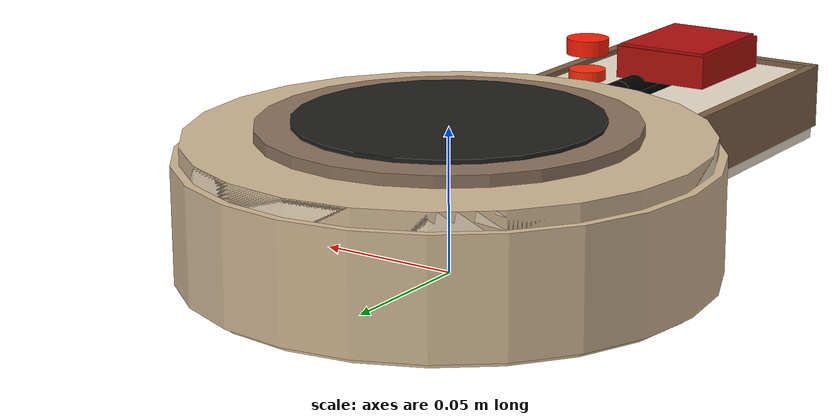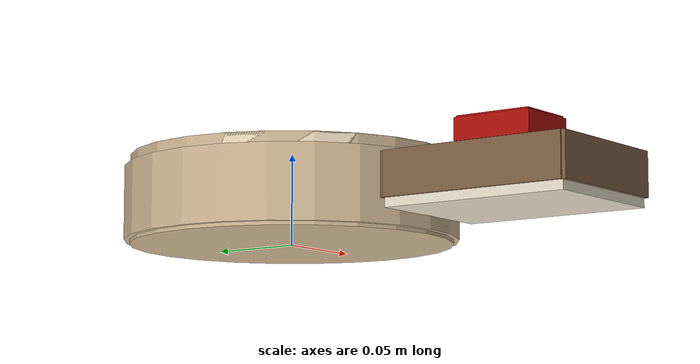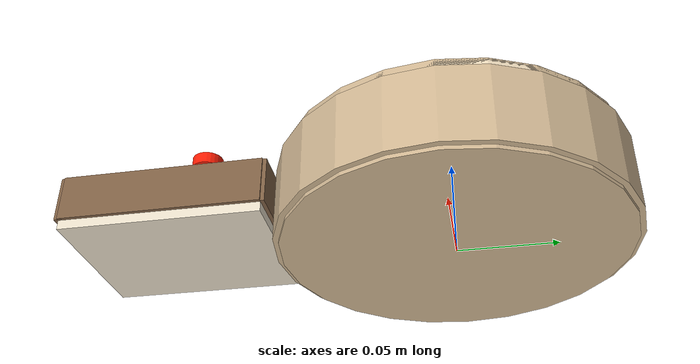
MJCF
<mujoco model="heating_pad">
  <compiler angle="radian" />
  <asset>
    <material name="mat_heating_pad" rgba="0.82 0.72 0.58 1" specular="0.18" shininess="0.12" />
    <material name="mat_pad_top" rgba="0.12 0.12 0.11 1" specular="0.55" shininess="0.45" />
    <material name="mat_pad_ring" rgba="0.93 0.86 0.74 1" specular="0.22" shininess="0.16" />
    <material name="mat_heat_plate" rgba="0.55 0.45 0.36 1" specular="0.40" shininess="0.30" />
    <material name="mat_switch_box" rgba="0.92 0.88 0.80 1" specular="0.18" shininess="0.12" />
    <material name="mat_switch_edge" rgba="0.50 0.38 0.27 1" specular="0.12" shininess="0.08" />
    <material name="mat_button" rgba="0.70 0.06 0.045 1" specular="0.40" shininess="0.30" />
    <material name="mat_cable" rgba="0.01 0.01 0.01 1" specular="0.08" shininess="0.04" />
    <material name="mat_led" rgba="1.0 0.18 0.04 1" specular="0.55" shininess="0.45" />
  </asset>
  <worldbody>
    <body>
      <body name="object">
        <body name="pad" pos="0 0 0">
          <site name="mug_region" type="box" pos="0 0 0.056" quat="1 0 0 0" size="0.062 0.062 0.004" rgba="0 0 0 0" />
          <geom name="pad_collision" type="cylinder" pos="0 0 0.024" size="0.088 0.024" material="mat_heating_pad" group="0" friction="1.0 0.3 0.1" />
          <geom name="pad_base_visual" type="cylinder" pos="0 0 0.022" size="0.091 0.020" material="mat_heating_pad" group="1" contype="0" conaffinity="0" />
          <geom name="pad_top_ring_visual" type="cylinder" pos="0 0 0.044" size="0.088 0.004" material="mat_pad_ring" group="1" contype="0" conaffinity="0" />
          <geom name="heat_plate_visual" type="cylinder" pos="0 0 0.049" size="0.064 0.003" material="mat_heat_plate" group="1" contype="0" conaffinity="0" />
          <geom name="black_ceramic_plate_visual" type="cylinder" pos="0 0 0.052" size="0.052 0.0015" material="mat_pad_top" group="1" contype="0" conaffinity="0" />
        </body>
        <body name="switch_box" pos="0 -0.142 0.022">
          <geom name="switch_box_collision" type="box" pos="0 0 0" size="0.040 0.052 0.013" material="mat_switch_box" group="0" friction="1.0 0.3 0.1" />
          <geom name="switch_box_visual" type="box" pos="0 0 0.002" size="0.039 0.051 0.012" material="mat_switch_box" group="1" contype="0" conaffinity="0" />
          <geom name="switch_box_front_edge_visual" type="box" pos="0 -0.052 0.004" size="0.041 0.002 0.012" material="mat_switch_edge" group="1" contype="0" conaffinity="0" />
          <geom name="switch_box_back_edge_visual" type="box" pos="0 0.052 0.004" size="0.041 0.002 0.012" material="mat_switch_edge" group="1" contype="0" conaffinity="0" />
          <geom name="switch_box_left_edge_visual" type="box" pos="-0.040 0 0.004" size="0.002 0.052 0.012" material="mat_switch_edge" group="1" contype="0" conaffinity="0" />
          <geom name="switch_box_right_edge_visual" type="box" pos="0.040 0 0.004" size="0.002 0.052 0.012" material="mat_switch_edge" group="1" contype="0" conaffinity="0" />
          <geom name="switch_led_lens_visual" type="cylinder" pos="0.022 0.016 0.018" size="0.007 0.002" material="mat_led" group="1" contype="0" conaffinity="0" />
          <body name="button" pos="-0.010 -0.004 0.025">
            <joint name="button" type="slide" pos="0 0 0" axis="0 0 1" limited="true" range="-0.008 0.0" damping="8.0" stiffness="2.0" springref="0.0" armature="0.02" />
            <geom name="button_collision" type="box" pos="0 0 0" size="0.018 0.022 0.006" material="mat_button" group="0" friction="0.45 0.10 0.02" solref="0.025 1" solimp="0.90 0.95 0.001" />
            <geom name="button_visual" type="box" pos="0 0 0.002" size="0.017 0.021 0.005" material="mat_button" group="1" contype="0" conaffinity="0" />
            <site name="indicator_on" type="cylinder" pos="0.032 0.020 0.004" quat="1 0 0 0" size="0.008 0.003" rgba="1 0.12 0.02 1" />
            <site name="indicator_off" type="cylinder" pos="0.032 0.020 0.0045" quat="1 0 0 0" size="0.008 0.003" rgba="0.05 0.85 0.20 0" />
          </body>
        </body>
        <geom name="power_cable_collision" type="capsule" fromto="0 -0.088 0.035 0 -0.142 0.035" size="0.006" material="mat_cable" group="0" friction="1.0 0.3 0.1" />
        <geom name="power_cable_pad_visual" type="capsule" fromto="0 -0.088 0.038 0 -0.112 0.038" size="0.005" material="mat_cable" group="1" contype="0" conaffinity="0" />
        <geom name="power_cable_box_visual" type="capsule" fromto="0 -0.112 0.038 0 -0.142 0.038" size="0.005" material="mat_cable" group="1" contype="0" conaffinity="0" />
      </body>
      <site rgba="0 0 0 0" size="0.06" pos="0 0 -0.005" name="bottom_site" />
      <site rgba="0 0 0 0" size="0.07" pos="0 0 0.064" name="top_site" />
      <site rgba="0 0 0 0" size="0.055" pos="0.055 0.055 0" name="horizontal_radius_site" />
    </body>
  </worldbody>
</mujoco>
